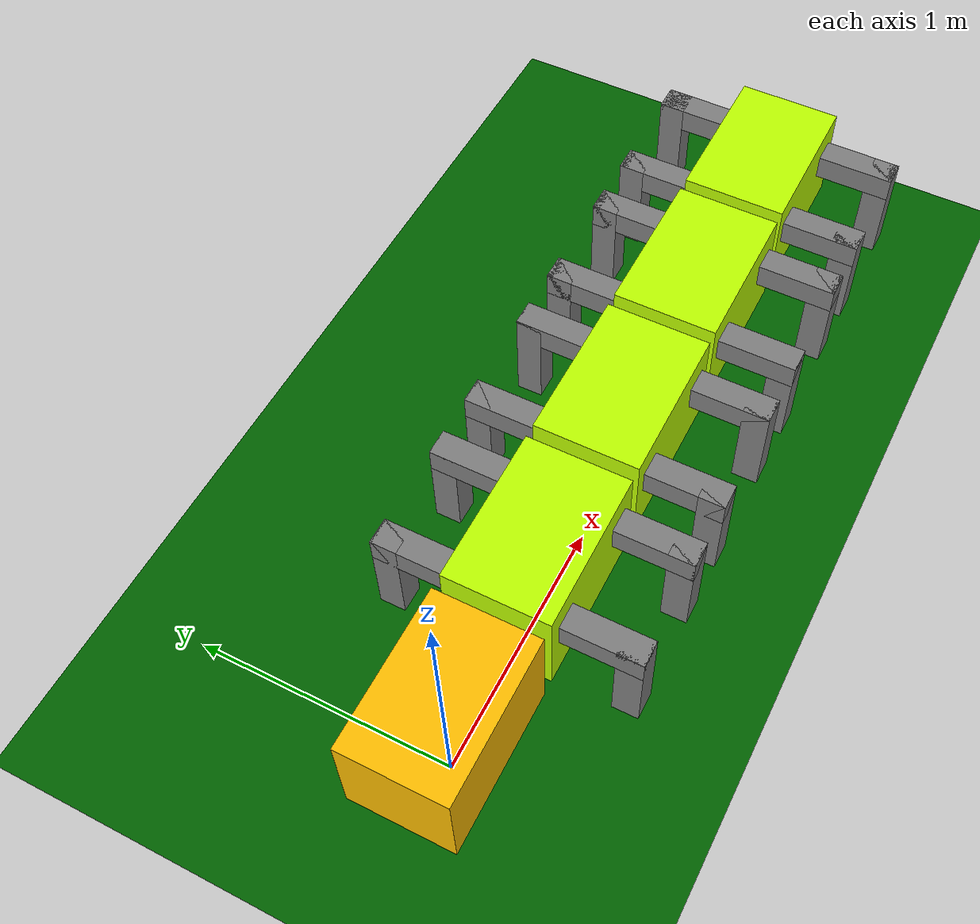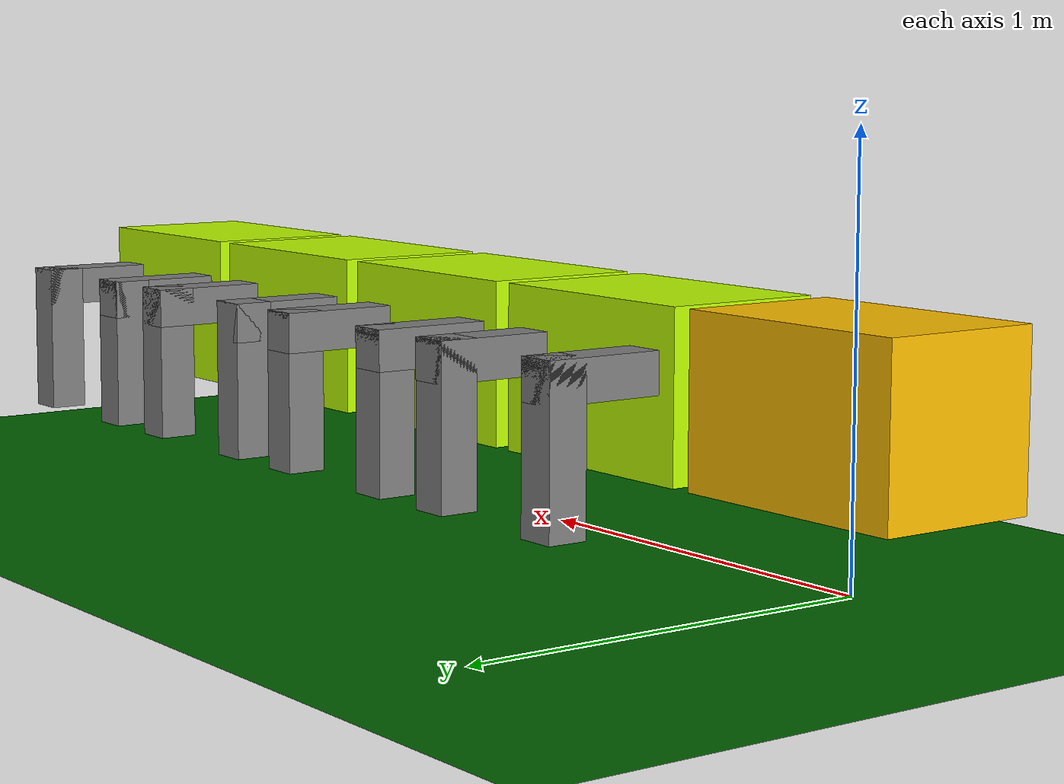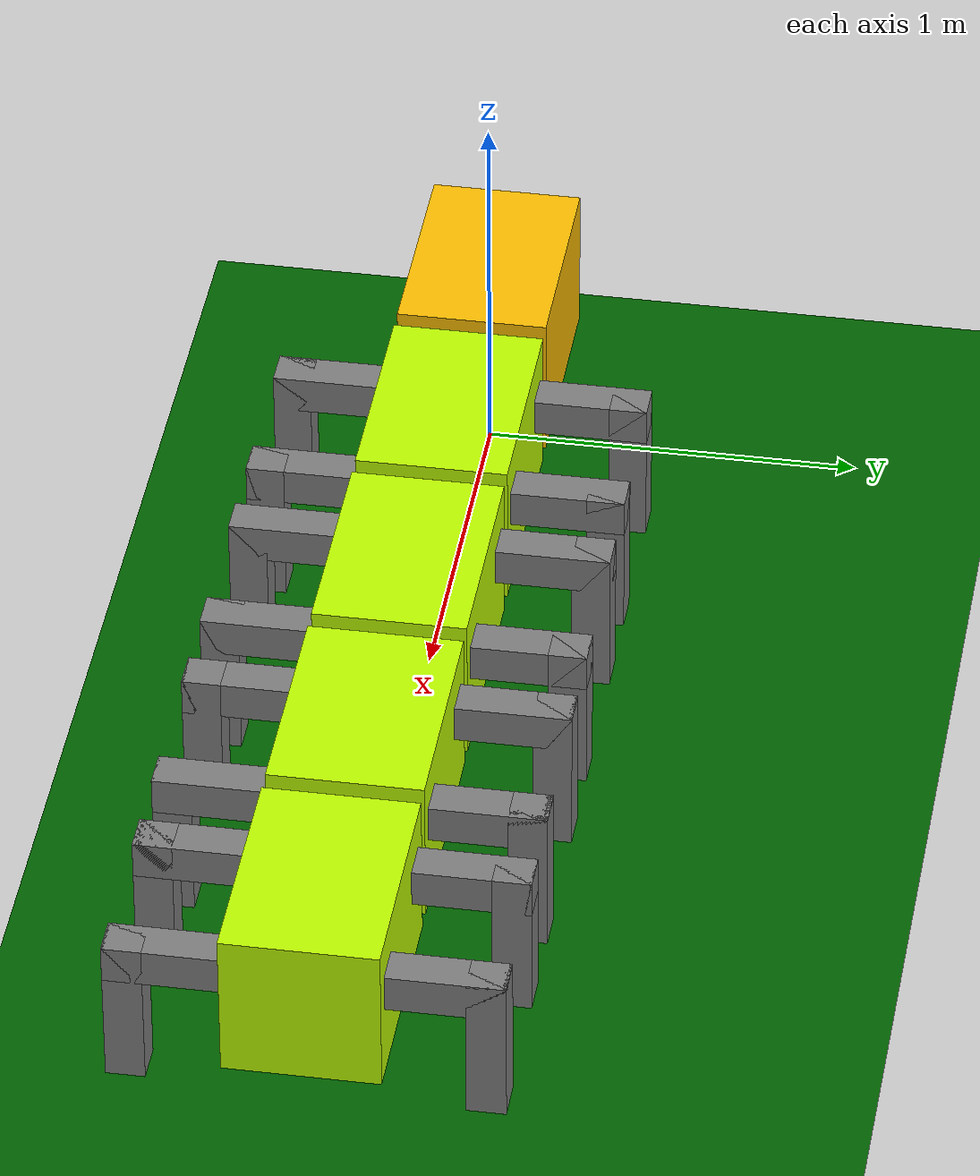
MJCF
<mujoco><option>timestep="0.1"</option><worldbody><light diffuse=".5 .5 .5" dir="0 0 1" pos="0 0 3" /><geom name="floor" rgba="0 .39 0 1" size="100 100 0.1" type="plane" /><body name="head"><freejoint name="root" /><geom name="head" pos="0 0 0.4" rgba="1 .75 0 1" size="0.3 0.2 0.2" type="box" /><body name="body0Body" pos="0.65 0 0.4"><geom rgba="0.75 1 0 1" size="0.3 0.2 0.2" type="box" /><joint axis="0 0 1" limited="true" name="body0Joint" pos="-0.15 0 0" range="-20 20" /><body name="body0leg1"><geom pos="0.2 0.35 0.05" size="0.05 0.15 0.05" type="box" /><joint axis="1 0 0" limited="true" name="body0leg1Hinge" pos="0 0 0.5" range="-10 10" /><geom pos="0.2 0.45 -.1" size="0.05 0.05 0.2" type="box" /></body><body name="body0leg11" /><body name="body0leg2"><geom pos="-0.2 0.35 0.05" size="0.05 0.15 0.05" type="box" /><joint axis="1 0 0" limited="true" name="body0leg2Hinge" pos="0 0 0.5" range="-10 10" /><geom pos="-0.2 0.45 -.1" size="0.05 0.05 0.2" type="box" /></body><body name="body0leg21" /><body name="body0leg3"><geom pos="0.2 -0.35 0.05" size="0.05 0.15 0.05" type="box" /><joint axis="1 0 0" limited="true" name="body0leg3Hinge" pos="0 0 0.5" range="-10 10" /><geom pos="0.2 -0.45 -.1" size="0.05 0.05 0.2" type="box" /></body><body name="body0leg31" /><body name="body0leg4"><geom pos="-0.2 -0.35 0.05" size="0.05 0.15 0.05" type="box" /><joint axis="1 0 0" limited="true" name="body0leg4Hinge" pos="0 0 0.5" range="-10 10" /><geom pos="-0.2 -0.45 -.1" size="0.05 0.05 0.2" type="box" /></body><body name="body0leg41" /></body><body name="body1Body" pos="1.3 0 0.4"><geom rgba="0.75 1 0 1" size="0.3 0.2 0.2" type="box" /><joint axis="0 0 1" limited="true" name="body1Joint" pos="-0.15 0 0" range="-20 20" /><body name="body1leg1"><geom pos="0.2 0.35 0.05" size="0.05 0.15 0.05" type="box" /><joint axis="1 0 0" limited="true" name="body1leg1Hinge" pos="0 0 0.5" range="-10 10" /><geom pos="0.2 0.45 -.1" size="0.05 0.05 0.2" type="box" /></body><body name="body1leg11" /><body name="body1leg2"><geom pos="-0.2 0.35 0.05" size="0.05 0.15 0.05" type="box" /><joint axis="1 0 0" limited="true" name="body1leg2Hinge" pos="0 0 0.5" range="-10 10" /><geom pos="-0.2 0.45 -.1" size="0.05 0.05 0.2" type="box" /></body><body name="body1leg21" /><body name="body1leg3"><geom pos="0.2 -0.35 0.05" size="0.05 0.15 0.05" type="box" /><joint axis="1 0 0" limited="true" name="body1leg3Hinge" pos="0 0 0.5" range="-10 10" /><geom pos="0.2 -0.45 -.1" size="0.05 0.05 0.2" type="box" /></body><body name="body1leg31" /><body name="body1leg4"><geom pos="-0.2 -0.35 0.05" size="0.05 0.15 0.05" type="box" /><joint axis="1 0 0" limited="true" name="body1leg4Hinge" pos="0 0 0.5" range="-10 10" /><geom pos="-0.2 -0.45 -.1" size="0.05 0.05 0.2" type="box" /></body><body name="body1leg41" /></body><body name="body2Body" pos="1.9500000000000002 0 0.4"><geom rgba="0.75 1 0 1" size="0.3 0.2 0.2" type="box" /><joint axis="0 0 1" limited="true" name="body2Joint" pos="-0.15 0 0" range="-20 20" /><body name="body2leg1"><geom pos="0.2 0.35 0.05" size="0.05 0.15 0.05" type="box" /><joint axis="1 0 0" limited="true" name="body2leg1Hinge" pos="0 0 0.5" range="-10 10" /><geom pos="0.2 0.45 -.1" size="0.05 0.05 0.2" type="box" /></body><body name="body2leg11" /><body name="body2leg2"><geom pos="-0.2 0.35 0.05" size="0.05 0.15 0.05" type="box" /><joint axis="1 0 0" limited="true" name="body2leg2Hinge" pos="0 0 0.5" range="-10 10" /><geom pos="-0.2 0.45 -.1" size="0.05 0.05 0.2" type="box" /></body><body name="body2leg21" /><body name="body2leg3"><geom pos="0.2 -0.35 0.05" size="0.05 0.15 0.05" type="box" /><joint axis="1 0 0" limited="true" name="body2leg3Hinge" pos="0 0 0.5" range="-10 10" /><geom pos="0.2 -0.45 -.1" size="0.05 0.05 0.2" type="box" /></body><body name="body2leg31" /><body name="body2leg4"><geom pos="-0.2 -0.35 0.05" size="0.05 0.15 0.05" type="box" /><joint axis="1 0 0" limited="true" name="body2leg4Hinge" pos="0 0 0.5" range="-10 10" /><geom pos="-0.2 -0.45 -.1" size="0.05 0.05 0.2" type="box" /></body><body name="body2leg41" /></body><body name="body3Body" pos="2.6 0 0.4"><geom rgba="0.75 1 0 1" size="0.3 0.2 0.2" type="box" /><joint axis="0 0 1" limited="true" name="body3Joint" pos="-0.15 0 0" range="-20 20" /><body name="body3leg1"><geom pos="0.2 0.35 0.05" size="0.05 0.15 0.05" type="box" /><joint axis="1 0 0" limited="true" name="body3leg1Hinge" pos="0 0 0.5" range="-10 10" /><geom pos="0.2 0.45 -.1" size="0.05 0.05 0.2" type="box" /></body><body name="body3leg11" /><body name="body3leg2"><geom pos="-0.2 0.35 0.05" size="0.05 0.15 0.05" type="box" /><joint axis="1 0 0" limited="true" name="body3leg2Hinge" pos="0 0 0.5" range="-10 10" /><geom pos="-0.2 0.45 -.1" size="0.05 0.05 0.2" type="box" /></body><body name="body3leg21" /><body name="body3leg3"><geom pos="0.2 -0.35 0.05" size="0.05 0.15 0.05" type="box" /><joint axis="1 0 0" limited="true" name="body3leg3Hinge" pos="0 0 0.5" range="-10 10" /><geom pos="0.2 -0.45 -.1" size="0.05 0.05 0.2" type="box" /></body><body name="body3leg31" /><body name="body3leg4"><geom pos="-0.2 -0.35 0.05" size="0.05 0.15 0.05" type="box" /><joint axis="1 0 0" limited="true" name="body3leg4Hinge" pos="0 0 0.5" range="-10 10" /><geom pos="-0.2 -0.45 -.1" size="0.05 0.05 0.2" type="box" /></body><body name="body3leg41" /></body></body></worldbody><actuator><motor gear="10" joint="body0Joint" name="body0Hinge" /><motor gear="100" joint="body0leg1Hinge" name="body0leg1Hinge" /><motor gear="100" joint="body0leg2Hinge" name="body0leg2Hinge" /><motor gear="100" joint="body0leg3Hinge" name="body0leg3Hinge" /><motor gear="100" joint="body0leg4Hinge" name="body0leg4Hinge" /><motor gear="10" joint="body1Joint" name="body1Hinge" /><motor gear="100" joint="body1leg1Hinge" name="body1leg1Hinge" /><motor gear="100" joint="body1leg2Hinge" name="body1leg2Hinge" /><motor gear="100" joint="body1leg3Hinge" name="body1leg3Hinge" /><motor gear="100" joint="body1leg4Hinge" name="body1leg4Hinge" /><motor gear="10" joint="body2Joint" name="body2Hinge" /><motor gear="100" joint="body2leg1Hinge" name="body2leg1Hinge" /><motor gear="100" joint="body2leg2Hinge" name="body2leg2Hinge" /><motor gear="100" joint="body2leg3Hinge" name="body2leg3Hinge" /><motor gear="100" joint="body2leg4Hinge" name="body2leg4Hinge" /><motor gear="10" joint="body3Joint" name="body3Hinge" /><motor gear="100" joint="body3leg1Hinge" name="body3leg1Hinge" /><motor gear="100" joint="body3leg2Hinge" name="body3leg2Hinge" /><motor gear="100" joint="body3leg3Hinge" name="body3leg3Hinge" /><motor gear="100" joint="body3leg4Hinge" name="body3leg4Hinge" /></actuator></mujoco>
